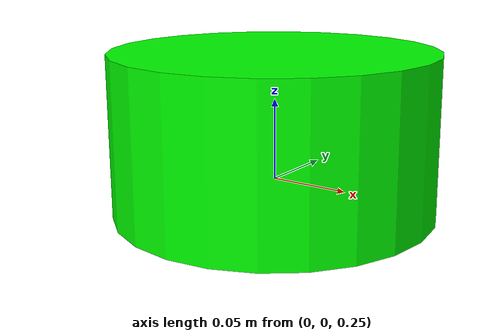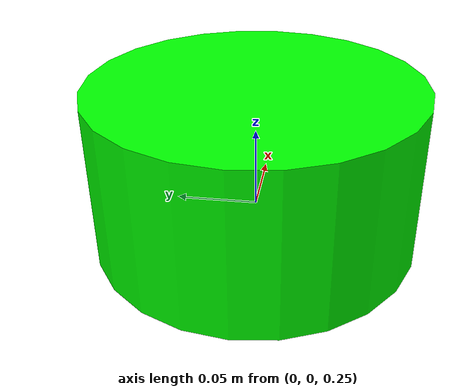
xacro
<?xml version="1.0"?>
<robot xmlns:xacro="http://www.ros.org/wiki/xacro" >

    <!--                        Geometry & Constants                    -->

    <!-- Pi Constant -->
    <xacro:property name="pi_const" value="3.14159265" />

    <!-- Body Dimensions -->
    <xacro:property name="l" value="1.1049"/>
    <xacro:property name="w" value="0.6096"/>
    <xacro:property name="h" value="0.6144"/>   <!-- actual: 0.9144-->

    <!-- Wheel Dimension -->
    <xacro:property name="r_wheel" value="0.3048"/>
    <xacro:property name="t_wheel" value="0.0400"/>

    <!-- Caster Dimension -->
    <xacro:property name="r_caster" value="0.1016"/>
    <xacro:property name="t_caster" value="0.0200"/>

    <!-- Distance btw Centers -->
    <xacro:property name="body_to_gnd" value="${h/2+r_caster}"/>
    <xacro:property name="wheel_to_body_side" value="0.55245"/>
    <xacro:property name="caster_to_body_side" value="0.14605"/>
    <xacro:property name="wheel_to_body_top" value="${w/2+t_wheel/2}"/>
    <xacro:property name="caster_to_body_top" value="${w/2+t_caster/2}"/>

    <!-- Material Density -->
    <xacro:property name="d_body" value="7850.0"/>
    <xacro:property name="d_wheel" value="7850.0"/>
    <xacro:property name="d_caster" value="7850.0"/>

    <!-- Wheelchair Mass -->
    <xacro:property name="m_body" value="${d_body*l*w*h}"/>
    <xacro:property name="m_wheel" value="${d_wheel*pi_const*r_wheel*r_wheel*t_wheel}"/>
    <xacro:property name="m_caster" value="${d_caster*pi_const*r_caster*r_caster*t_caster}"/>

    <!-- Moment of Inertia of Body -->
    <xacro:property name="Ix_body" value="${(1/12)*m_body*(h*h+w*w)}"/>
    <xacro:property name="Iy_body" value="${(1/12)*m_body*(l*l+h*h)}"/>
    <xacro:property name="Iz_body" value="${(1/12)*m_body*(l*l+w*w)}"/>

    <!-- Moment of Inertia of Wheel -->
    <xacro:property name="I_wheel" value="${(1.0/12.0)*m_wheel*(3.0*r_wheel*r_wheel+t_wheel*t_wheel)}"/>
    <xacro:property name="Iz_wheel" value="${0.5*m_wheel*r_wheel*r_wheel}"/>

    <!-- Moment of Inertia of Caster -->
    <xacro:property name="I_caster" value="${(1.0/12.0)*m_caster*(3.0*r_caster*r_caster+t_caster*t_caster)}"/>
    <xacro:property name="Iz_caster" value="${0.5*m_caster*r_caster*r_caster}"/>

    <!-- Macro for Inertial Section -->
    <xacro:macro name="inertia_body">
        <!-- displacement & rientation of center of mass frame of link to ground -->
        <inertial>
            <origin xyz="0 0 ${body_to_gnd}" rpy="0 0 0"/>
            <mass value="${m_body}"/>
            <inertia ixx="${Ix_body}" ixy="0.0" ixz="0.0"
                     iyy="${Iy_body}" iyz="0.0"
                     izz="${Iz_body}"/>
        </inertial>
    </xacro:macro>

    <xacro:macro name="inertia_wheel">
        <inertial>
            <origin xyz="0 0 0" rpy="${pi_const/2} 0 0"/>
            <mass value="${m_wheel}"/>
            <inertia ixx="${I_wheel}" ixy="0.0" ixz="0.0"
                     iyy="${I_wheel}" iyz="0.0"
                     izz="${Iz_wheel}"/>
        </inertial>
    </xacro:macro>

    <xacro:macro name="inertia_caster">
        <inertial>
            <origin xyz="0 0 0" rpy="${pi_const/2} 0 0"/>
            <mass value="${m_caster}"/>
            <inertia ixx="${I_caster}" ixy="0.0" ixz="0.0"
                     iyy="${I_caster}" iyz="0.0"
                     izz="${Iz_caster}"/>
        </inertial>
    </xacro:macro>

    <!-- Additional Files -->
    <xacro:include filename="$(find wheelchair_one)/description/gazebo_control"/>

    <!-- colors -->
    <material name="blue">
        <color rgba="0 0 1 1"/>
    </material>

    <material name="red">
        <color rgba="0 1 0 1"/>
    </material>

    <material name="grey">
        <color rgba="1 1 1 1"/>
    </material>

    <material name="light_grey">
        <color rgba="0.5 0.5 0.5 0.5"/>
    </material>

    <material name="black">
        <color rgba="0 0 0 1"/>
    </material>

    <!--                            Links & Joints                      -->
    <!-- Base Link-->

    <link name="base_link"></link>

    <!-- Base_Footprint Link -->
    <joint name="base_footprint_joint" type="fixed">
        <parent link="base_link"/>
        <child link="base_footprint"/>
        <origin xyz="0 0 0" rpy="0 0 0"/>
    </joint>

    <link name="base_footprint"></link>

    <!-- Chassis-->

    <!--                            LiDAR                               -->
    <joint name="lidar_joint" type="fixed">
        <origin xyz="0 0 0.18" rpy="0 0 0"/>
        <parent link="base_footprint"/>
        <child link="base_laser"/>
        <axis xyz="0 1 0" rpy="0 0 0"/>
    </joint>

    <link name="base_laser">
        <visual>
            <origin xyz="0 0 0.1" rpy="0 0 0"/>
            <geometry>
                <cylinder length="0.1" radius="0.1"/>
            </geometry>
            <material name="red"/>
        </visual>

        <collision name='collision'>
            <origin xyz="0 0 0.1" rpy="0 0 0"/>
            <geometry>
                <cylinder length="0.1" radius="0.1"/>
            </geometry>
        </collision>

        <inertial>
            <mass value="1e-6"/>
            <origin xyz="0 0 0.1" rpy="0 0 0"/>
            <inertia ixx="1e-6" ixy="0" ixz="0"
                     iyy="1e-6" iyz="0" izz="1e-6"/>
        </inertial>
    </link>

    <!--                         Depth Camera                           -->

</robot>
